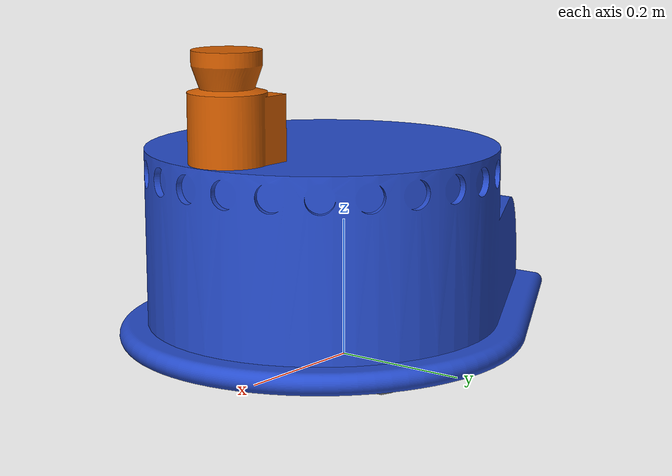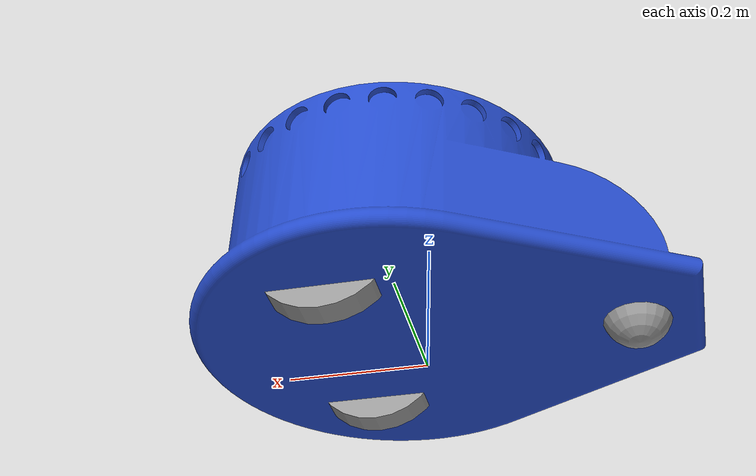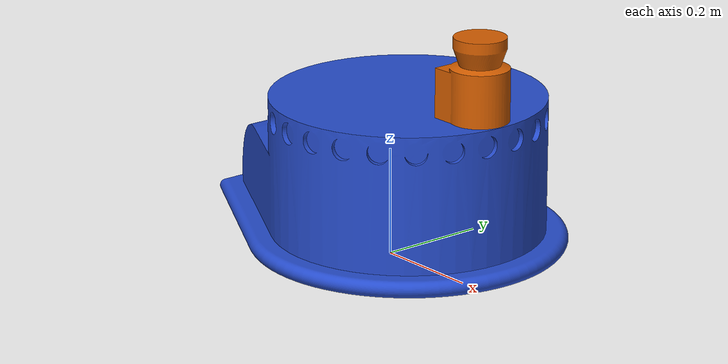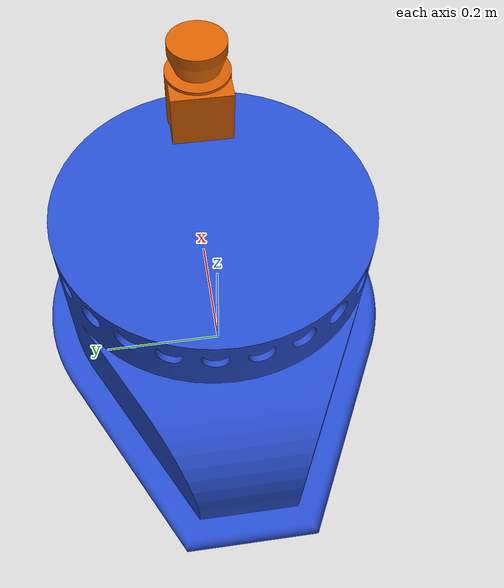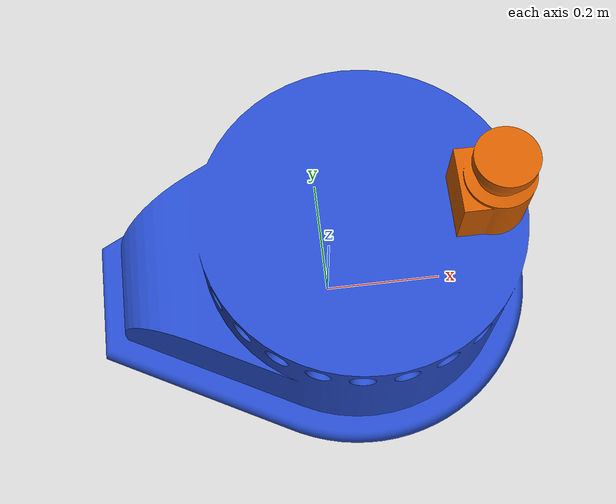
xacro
<?xml version="1.0"?>
<robot name="SCITOS_G5" xmlns:xacro="http://www.ros.org/wiki/xacro">

  <!-- define properties -->
  <xacro:property name="package_name" value="ias0060_scitos_auclair_bryan_schneider" />

  <xacro:property name="PI" value="3.141592653589793" />
  <xacro:property name="wheel_dist_x" value="0.11" />
  <xacro:property name="wheel_dist_y" value="0.15" />
  <xacro:property name="wheel_dist_z" value="0.05" />
  <xacro:property name="passive_wheel_dist_x" value="0.295" />
  <xacro:property name="passive_wheel_dist_z" value="0.1" />
  <xacro:property name="lidar_x" value="0.24" />
  <xacro:property name="lidar_y" value="0.0" />
  <xacro:property name="lidar_z" value="0.3" />

  <!-- include macros -->
  <xacro:include filename="$(find ${package_name})/data/urdf/base/base.urdf.xacro" />
  <xacro:include filename="$(find ${package_name})/data/urdf/wheels/diff_wheel.urdf.xacro" />
  <xacro:include filename="$(find ${package_name})/data/urdf/wheels/passive_wheel.urdf.xacro" />
  <xacro:include filename="$(find ${package_name})/data/urdf/sensors/lidar.urdf.xacro" />
  <xacro:include filename="$(find ${package_name})/data/urdf/scitos.gazebo.xacro" />

  <!-- load meshes -->
  <xacro:property name="base_mesh_file" value="file://$(find ${package_name})/data/meshes/Base.dae" />
  <xacro:property name="laser_mesh_file" value="file://$(find ${package_name})/data/meshes/SICK_S300.STL" />

  <!-- define robot by calling macros -->
  <xacro:base mesh_file="${base_mesh_file}"/>

  <xacro:diff_wheel prefix="right" parent="base_link">
    <origin xyz="${wheel_dist_x} ${-wheel_dist_y} ${-wheel_dist_z}" rpy="0 0 0"/>
  </xacro:diff_wheel>

  <xacro:diff_wheel prefix="left" parent="base_link">
    <origin xyz="${wheel_dist_x} ${wheel_dist_y} ${-wheel_dist_z}" rpy="0 0 0"/>
  </xacro:diff_wheel>

  <xacro:passive_wheel parent="base_link">
    <origin xyz="${-passive_wheel_dist_x} 0 ${-passive_wheel_dist_z}"/>
  </xacro:passive_wheel>

  <xacro:lidar parent="base_link" mesh_file="${laser_mesh_file}">
    <origin xyz="${lidar_x} ${lidar_y} ${lidar_z}" rpy="0 0 0"/>
  </xacro:lidar>

</robot>

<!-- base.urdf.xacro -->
<robot name="base" xmlns:xacro="http://www.ros.org/wiki/xacro">

  <xacro:property name="base_thickness" value="0.25" />
  <xacro:property name="base_diam" value="0.7" />
  <xacro:property name="base_mass" value="56.29" />

  <xacro:macro name="base" params="mesh_file">
    <link name="base_footprint">
      <visual>
        <origin xyz="0 0 0" rpy="0 0 0" />
        <geometry>
          <box size="0.001 0.001 0.001" />
        </geometry>
      </visual>
    </link>

    <link name="base_link">
      <visual>
        <geometry>
          <mesh filename="${base_mesh_file}" scale="1.0 1.0 1.0"/>
        </geometry>
        <material name="blue"/>
        <origin xyz="-0.025 0 0.025" rpy= "0 0 0"/>
      </visual>
      <inertial>
        <mass value="${base_mass}"/>
        <!-- inertia tensor taken from CAD file -->
        <inertia ixx="1.27627" ixy="0.000255157" ixz="-0.0693358"
                 iyy="1.78047" iyz="0.000140996"
                 izz="2.28396" />
        <origin xyz="0.035 0 -0.008" rpy= "0 0 0"/>
      </inertial>
      <collision>
        <geometry>
          <cylinder length="${base_thickness}" radius="${base_diam/2}"/>
          <origin xyz="-0.25 0 0.5" rpy= "0 0 0"/>
        </geometry>
      </collision>
    </link>

    <joint name="base_footprint_joint" type="fixed">
      <origin xyz="0 0 0.15" rpy="0 0 0" />
      <parent link="base_footprint"/>
      <child link="base_link" />
    </joint>
  </xacro:macro>

</robot>

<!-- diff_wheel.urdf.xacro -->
<robot name="wheel" xmlns:xacro="http://www.ros.org/wiki/xacro">

  <xacro:property name="wheel_diam" value="0.2" />
  <xacro:property name="wheel_thickness" value="0.04" />
  <xacro:property name="wheel_mass" value="0.15" />

  <xacro:macro name="diff_wheel" params="prefix parent *origin">

    <link name="${prefix}_wheel">
    <visual>
      <geometry>
        <cylinder length="${wheel_thickness}" radius="${wheel_diam/2}"/>
      </geometry>
      <origin xyz="0 0 0" rpy="${PI/2} 0 0"/>
    </visual>
    <inertial>
      <mass value="${wheel_mass}"/>
      <inertia ixx="${(wheel_mass*(3*(wheel_diam/2)*(wheel_diam/2)+base_thickness*wheel_thickness))/12}"
          ixy="0.0" ixz="0.0" izz="${(wheel_mass*(3*(wheel_diam/2)*(wheel_diam/2)+wheel_thickness*wheel_thickness))/12}"
          iyz="0.0" iyy="${(wheel_mass*(wheel_diam/2)*(wheel_diam/2))/2}"/>
    </inertial>
    <collision>
      <geometry>
        <cylinder length="${wheel_thickness}" radius="${wheel_diam/2}"/>
      </geometry>
      <origin xyz="0 0 0" rpy="${PI/2} 0 0"/>
    </collision>
    </link>

    <joint name="base_to_${prefix}_wheel" type="continuous">
    <axis rpy="0 0 0" xyz="0 1 0"/>
    <parent link="${parent}"/>
    <child link="${prefix}_wheel"/>
    <xacro:insert_block name="origin" />
    <limit effort="30.0" velocity="20.0" />
    </joint>

    <!-- This block connects the wheel joint to an actuator (motor), which informs both
    simulation and visualization of the robot -->
    <transmission name="${prefix}_wheel_trans">
    <type>transmission_interface/SimpleTransmission</type>
    <actuator name="${prefix}_wheel_motor">
      <hardwareInterface>hardware_interface/VelocityJointInterface</hardwareInterface>
      <mechanicalReduction>1</mechanicalReduction>
    </actuator>
    <joint name="base_to_${prefix}_wheel">
      <hardwareInterface>hardware_interface/VelocityJointInterface</hardwareInterface>
    </joint>
    </transmission>

    <!-- This block provides the simulator (Gazebo) with information on a few additional
    physical properties. See http://gazebosim.org/tutorials/?tut=ros_urdf for more-->
    <gazebo reference="${prefix}_wheel">
    <mu1 value="1.0"/>
    <mu2 value="1.0"/>
    <kp value="10000000.0" />
    <kd value="1.0" />
    <slip1 value="0"/>
    <slip2 value="0"/>
    <material>Gazebo/Grey</material>
    </gazebo>

  </xacro:macro>

</robot>

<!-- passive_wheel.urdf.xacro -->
<robot name="passive_wheel" xmlns:xacro="http://www.ros.org/wiki/xacro">

  <xacro:property name="passive_wheel_diam" value="0.1" />
  <xacro:property name="passive_wheel_mass" value="0.2" />

  <xacro:macro name="passive_wheel" params="parent *origin">

    <link name="passive_wheel">
      <visual>
        <geometry>
          <sphere radius="${passive_wheel_diam/2}"/>
        </geometry>
      </visual>
      <inertial>
        <mass value="${passive_wheel_mass}"/>
        <inertia ixx="${(2/5)*(passive_wheel_mass*(passive_wheel_diam/2)*(passive_wheel_diam/2))}"
                ixy="0.0" ixz="0.0"
                iyy="${(2/5)*(passive_wheel_mass*(passive_wheel_diam/2)*(passive_wheel_diam/2))}"
                iyz="0.0" izz="${(2/5)*(passive_wheel_mass*(passive_wheel_diam/2)*(passive_wheel_diam/2))}"/>
      </inertial>
      <collision>
        <geometry>
          <sphere radius="${passive_wheel_diam/2}"/>
        </geometry>
      </collision>
    </link>

    <joint name="base_to_passive_wheel" type="fixed">
      <parent link="${parent}"/>
      <child link="passive_wheel"/>
      <xacro:insert_block name="origin" />
    </joint>

    <gazebo reference="passive_wheel">
      <mu1 value="0.0"/>
      <mu2 value="0.0"/>
      <kp value="10000000.0" />
      <kd value="1.0" />
      <material>Gazebo/Grey</material>
    </gazebo>

  </xacro:macro>

</robot>

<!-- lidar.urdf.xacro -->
<robot name="lidar" xmlns:xacro="http://www.ros.org/wiki/xacro">

  <xacro:macro name="lidar" params="parent mesh_file *origin">
    <!-- Hokuyo Lidar -->
    <link name="hokuyo_link">
      <visual>
        <!-- xyz compensation due to issues with imported CAD file -->
        <origin xyz="-0.06 -0.065 -0.14" rpy="0 0 0"/>
        <geometry>
          <mesh filename="${mesh_file}" scale="0.001 0.001 0.001"/>
        </geometry>
      </visual>
      <inertial> <!-- TODO: assign proper inertial values here -->
        <mass value="1e-5" />
        <origin xyz="0 0 0" rpy="0 0 0"/>
        <inertia ixx="1e-6" ixy="0" ixz="0" iyy="1e-6" iyz="0" izz="1e-6" />
      </inertial>
    </link>

    <joint name="hokuyo_joint" type="fixed">
      <xacro:insert_block name="origin" />
      <parent link="${parent}"/>
      <child link="hokuyo_link"/>
    </joint>

    <!-- Hokuyo Lidar plugin-->
    <gazebo reference="hokuyo_link">
      <visual name="lidar_color">
        <material>
          <ambient>0.9 0.9 0.5 1</ambient>
          <diffuse>0.9 0.9 0.5 1</diffuse>
          <specular>0.1 0.1 0.1 1</specular>
          <emissive>0 0 0 0</emissive>
        </material>
      </visual>
      <sensor type="ray" name="head_hokuyo_sensor">
        <pose>0 0 0 0 0 0</pose>
        <visualize>false</visualize>
        <update_rate>40</update_rate>
        <ray>
          <scan>
            <horizontal>
              <samples>720</samples>
              <resolution>1</resolution>
              <min_angle>-1.570796</min_angle>
              <max_angle>1.570796</max_angle>
            </horizontal>
          </scan>
          <range>
            <min>0.10</min>
            <max>30.0</max>
            <resolution>0.01</resolution>
          </range>
          <noise>
            <type>gaussian</type>
            <mean>0.0</mean>
            <stddev>0.01</stddev>
          </noise>
        </ray>
        <plugin name="gazebo_ros_head_hokuyo_controller" filename="libgazebo_ros_laser.so">
          <topicName>laser_scan</topicName>
          <frameName>hokuyo_link</frameName>
        </plugin>
      </sensor>
    </gazebo>
  </xacro:macro>

</robot>
